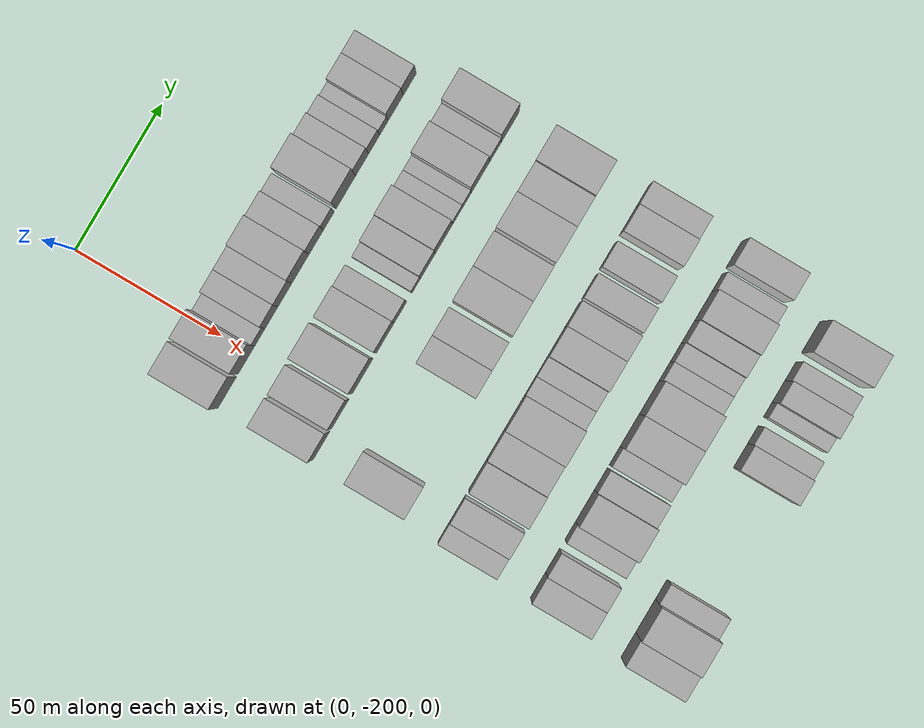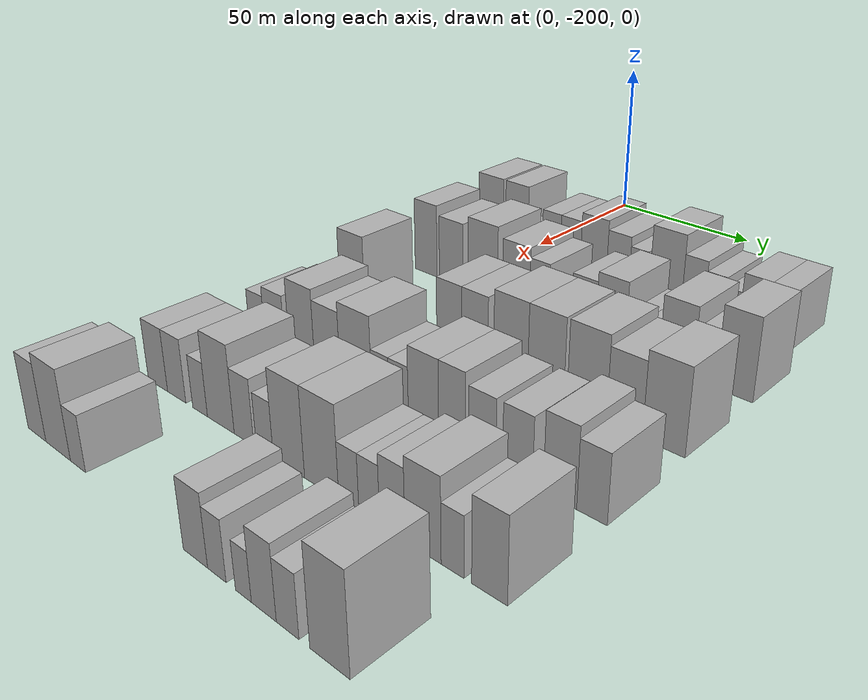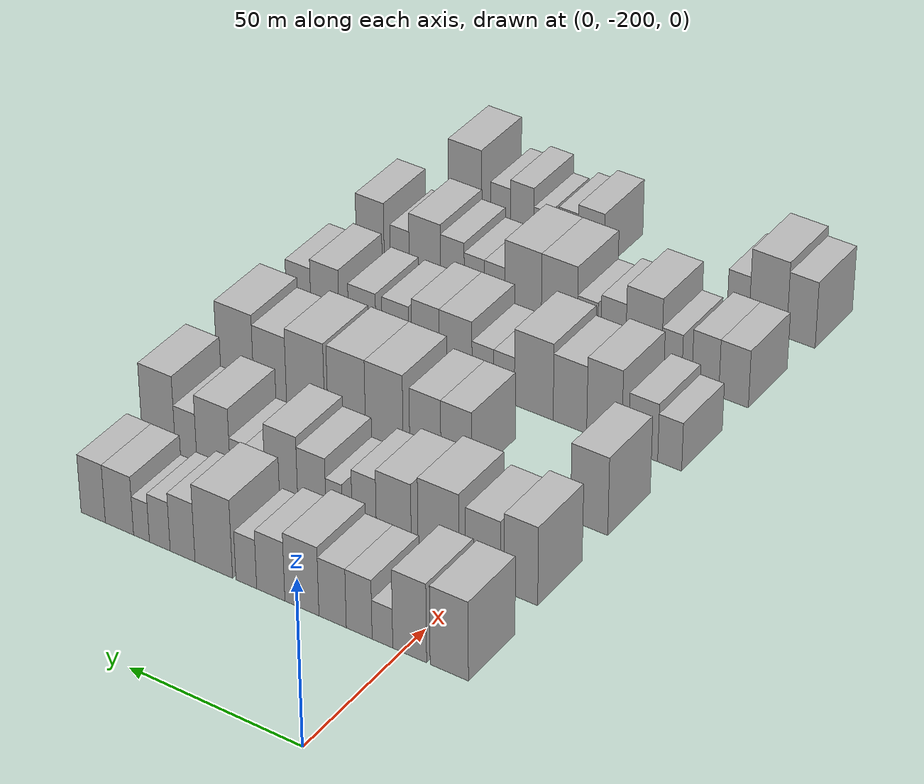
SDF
<sdf version="1.6">
 <world name="default">
  <model name="building_37">
   <static>1</static>
   <pose>50.0000 -213.4849 0 0.000000 0.000000 0.000000</pose>
   <link name="link">
    <pose>0 0 12.00 0 0 0</pose>
    <collision name="collision"><geometry><box><size>20.0000 10.8123 24.0000</size></box></geometry></collision>
    <visual name="visual">
     <cast_shadows>0</cast_shadows>
     <geometry><box><size>20.0000 10.8123 24.0000</size></box></geometry>
     <material>
      <script>
       <uri>model://HANNAS_wall/materials/scripts</uri>
       <uri>model://HANNAS_wall/materials/textures</uri>
       <name>vrc/HANNAS_wall</name>
      </script>
     </material>
    </visual>
   </link>
  </model>
  <model name="building_38">
   <static>1</static>
   <pose>50.0000 -202.2470 0 0.000000 0.000000 0.000000</pose>
   <link name="link">
    <pose>0 0 12.00 0 0 0</pose>
    <collision name="collision"><geometry><box><size>20.0000 9.6637 24.0000</size></box></geometry></collision>
    <visual name="visual">
     <cast_shadows>0</cast_shadows>
     <geometry><box><size>20.0000 9.6637 24.0000</size></box></geometry>
     <material>
      <script>
       <uri>model://HANNAS_wall/materials/scripts</uri>
       <uri>model://HANNAS_wall/materials/textures</uri>
       <name>vrc/HANNAS_wall</name>
      </script>
     </material>
    </visual>
   </link>
  </model>
  <model name="building_39">
   <static>1</static>
   <pose>50.0000 -194.4472 0 0.000000 0.000000 0.000000</pose>
   <link name="link">
    <pose>0 0 6.00 0 0 0</pose>
    <collision name="collision"><geometry><box><size>20.0000 5.9358 12.0000</size></box></geometry></collision>
    <visual name="visual">
     <cast_shadows>0</cast_shadows>
     <geometry><box><size>20.0000 5.9358 12.0000</size></box></geometry>
     <material>
      <script>
       <uri>model://HANNAS_wall/materials/scripts</uri>
       <uri>model://HANNAS_wall/materials/textures</uri>
       <name>vrc/HANNAS_wall</name>
      </script>
     </material>
    </visual>
   </link>
  </model>
  <model name="building_40">
   <static>1</static>
   <pose>50.0000 -187.7414 0 0.000000 0.000000 0.000000</pose>
   <link name="link">
    <pose>0 0 9.00 0 0 0</pose>
    <collision name="collision"><geometry><box><size>20.0000 7.4758 18.0000</size></box></geometry></collision>
    <visual name="visual">
     <cast_shadows>0</cast_shadows>
     <geometry><box><size>20.0000 7.4758 18.0000</size></box></geometry>
     <material>
      <script>
       <uri>model://HANNAS_wall/materials/scripts</uri>
       <uri>model://HANNAS_wall/materials/textures</uri>
       <name>vrc/HANNAS_wall</name>
      </script>
     </material>
    </visual>
   </link>
  </model>
  <model name="building_41">
   <static>1</static>
   <pose>50.0000 -180.0132 0 0.000000 0.000000 0.000000</pose>
   <link name="link">
    <pose>0 0 9.00 0 0 0</pose>
    <collision name="collision"><geometry><box><size>20.0000 7.9806 18.0000</size></box></geometry></collision>
    <visual name="visual">
     <cast_shadows>0</cast_shadows>
     <geometry><box><size>20.0000 7.9806 18.0000</size></box></geometry>
     <material>
      <script>
       <uri>model://HANNAS_wall/materials/scripts</uri>
       <uri>model://HANNAS_wall/materials/textures</uri>
       <name>vrc/HANNAS_wall</name>
      </script>
     </material>
    </visual>
   </link>
  </model>
  <model name="building_42">
   <static>1</static>
   <pose>50.0000 -171.0096 0 0.000000 0.000000 0.000000</pose>
   <link name="link">
    <pose>0 0 10.50 0 0 0</pose>
    <collision name="collision"><geometry><box><size>20.0000 10.0265 21.0000</size></box></geometry></collision>
    <visual name="visual">
     <cast_shadows>0</cast_shadows>
     <geometry><box><size>20.0000 10.0265 21.0000</size></box></geometry>
     <material>
      <script>
       <uri>model://HANNAS_wall/materials/scripts</uri>
       <uri>model://HANNAS_wall/materials/textures</uri>
       <name>vrc/HANNAS_wall</name>
      </script>
     </material>
    </visual>
   </link>
  </model>
  <model name="building_43">
   <static>1</static>
   <pose>50.0000 -161.8085 0 0.000000 0.000000 0.000000</pose>
   <link name="link">
    <pose>0 0 9.00 0 0 0</pose>
    <collision name="collision"><geometry><box><size>20.0000 8.3756 18.0000</size></box></geometry></collision>
    <visual name="visual">
     <cast_shadows>0</cast_shadows>
     <geometry><box><size>20.0000 8.3756 18.0000</size></box></geometry>
     <material>
      <script>
       <uri>model://HANNAS_wall/materials/scripts</uri>
       <uri>model://HANNAS_wall/materials/textures</uri>
       <name>vrc/HANNAS_wall</name>
      </script>
     </material>
    </visual>
   </link>
  </model>
  <model name="building_44">
   <static>1</static>
   <pose>50.0000 -154.5138 0 0.000000 0.000000 0.000000</pose>
   <link name="link">
    <pose>0 0 7.50 0 0 0</pose>
    <collision name="collision"><geometry><box><size>20.0000 6.2137 15.0000</size></box></geometry></collision>
    <visual name="visual">
     <cast_shadows>0</cast_shadows>
     <geometry><box><size>20.0000 6.2137 15.0000</size></box></geometry>
     <material>
      <script>
       <uri>model://HANNAS_wall/materials/scripts</uri>
       <uri>model://HANNAS_wall/materials/textures</uri>
       <name>vrc/HANNAS_wall</name>
      </script>
     </material>
    </visual>
   </link>
  </model>
  <model name="building_45">
   <static>1</static>
   <pose>50.0000 -144.7512 0 0.000000 0.000000 0.000000</pose>
   <link name="link">
    <pose>0 0 12.00 0 0 0</pose>
    <collision name="collision"><geometry><box><size>20.0000 11.3115 24.0000</size></box></geometry></collision>
    <visual name="visual">
     <cast_shadows>0</cast_shadows>
     <geometry><box><size>20.0000 11.3115 24.0000</size></box></geometry>
     <material>
      <script>
       <uri>model://HANNAS_wall/materials/scripts</uri>
       <uri>model://HANNAS_wall/materials/textures</uri>
       <name>vrc/HANNAS_wall</name>
      </script>
     </material>
    </visual>
   </link>
  </model>
  <model name="building_46">
   <static>1</static>
   <pose>50.0000 -135.3058 0 0.000000 0.000000 0.000000</pose>
   <link name="link">
    <pose>0 0 9.00 0 0 0</pose>
    <collision name="collision"><geometry><box><size>20.0000 7.5793 18.0000</size></box></geometry></collision>
    <visual name="visual">
     <cast_shadows>0</cast_shadows>
     <geometry><box><size>20.0000 7.5793 18.0000</size></box></geometry>
     <material>
      <script>
       <uri>model://HANNAS_wall/materials/scripts</uri>
       <uri>model://HANNAS_wall/materials/textures</uri>
       <name>vrc/HANNAS_wall</name>
      </script>
     </material>
    </visual>
   </link>
  </model>
  <model name="building_47">
   <static>1</static>
   <pose>50.0000 -128.3319 0 0.000000 0.000000 0.000000</pose>
   <link name="link">
    <pose>0 0 7.50 0 0 0</pose>
    <collision name="collision"><geometry><box><size>20.0000 6.3683 15.0000</size></box></geometry></collision>
    <visual name="visual">
     <cast_shadows>0</cast_shadows>
     <geometry><box><size>20.0000 6.3683 15.0000</size></box></geometry>
     <material>
      <script>
       <uri>model://HANNAS_wall/materials/scripts</uri>
       <uri>model://HANNAS_wall/materials/textures</uri>
       <name>vrc/HANNAS_wall</name>
      </script>
     </material>
    </visual>
   </link>
  </model>
  <model name="building_48">
   <static>1</static>
   <pose>50.0000 -122.7031 0 0.000000 0.000000 0.000000</pose>
   <link name="link">
    <pose>0 0 6.00 0 0 0</pose>
    <collision name="collision"><geometry><box><size>20.0000 4.8894 12.0000</size></box></geometry></collision>
    <visual name="visual">
     <cast_shadows>0</cast_shadows>
     <geometry><box><size>20.0000 4.8894 12.0000</size></box></geometry>
     <material>
      <script>
       <uri>model://HANNAS_wall/materials/scripts</uri>
       <uri>model://HANNAS_wall/materials/textures</uri>
       <name>vrc/HANNAS_wall</name>
      </script>
     </material>
    </visual>
   </link>
  </model>
  <model name="building_49">
   <static>1</static>
   <pose>50.0000 -115.8903 0 0.000000 0.000000 0.000000</pose>
   <link name="link">
    <pose>0 0 9.00 0 0 0</pose>
    <collision name="collision"><geometry><box><size>20.0000 8.7363 18.0000</size></box></geometry></collision>
    <visual name="visual">
     <cast_shadows>0</cast_shadows>
     <geometry><box><size>20.0000 8.7363 18.0000</size></box></geometry>
     <material>
      <script>
       <uri>model://HANNAS_wall/materials/scripts</uri>
       <uri>model://HANNAS_wall/materials/textures</uri>
       <name>vrc/HANNAS_wall</name>
      </script>
     </material>
    </visual>
   </link>
  </model>
  <model name="building_50">
   <static>1</static>
   <pose>50.0000 -107.7333 0 0.000000 0.000000 0.000000</pose>
   <link name="link">
    <pose>0 0 9.00 0 0 0</pose>
    <collision name="collision"><geometry><box><size>20.0000 7.5775 18.0000</size></box></geometry></collision>
    <visual name="visual">
     <cast_shadows>0</cast_shadows>
     <geometry><box><size>20.0000 7.5775 18.0000</size></box></geometry>
     <material>
      <script>
       <uri>model://HANNAS_wall/materials/scripts</uri>
       <uri>model://HANNAS_wall/materials/textures</uri>
       <name>vrc/HANNAS_wall</name>
      </script>
     </material>
    </visual>
   </link>
  </model>
  <model name="building_158">
   <static>1</static>
   <pose>82.0000 -212.7467 0 0.000000 0.000000 0.000000</pose>
   <link name="link">
    <pose>0 0 12.00 0 0 0</pose>
    <collision name="collision"><geometry><box><size>20.0000 9.6644 24.0000</size></box></geometry></collision>
    <visual name="visual">
     <cast_shadows>0</cast_shadows>
     <geometry><box><size>20.0000 9.6644 24.0000</size></box></geometry>
     <material>
      <script>
       <uri>model://HANNAS_wall/materials/scripts</uri>
       <uri>model://HANNAS_wall/materials/textures</uri>
       <name>vrc/HANNAS_wall</name>
      </script>
     </material>
    </visual>
   </link>
  </model>
  <model name="building_159">
   <static>1</static>
   <pose>82.0000 -201.8767 0 0.000000 0.000000 0.000000</pose>
   <link name="link">
    <pose>0 0 10.50 0 0 0</pose>
    <collision name="collision"><geometry><box><size>20.0000 10.0757 21.0000</size></box></geometry></collision>
    <visual name="visual">
     <cast_shadows>0</cast_shadows>
     <geometry><box><size>20.0000 10.0757 21.0000</size></box></geometry>
     <material>
      <script>
       <uri>model://HANNAS_wall/materials/scripts</uri>
       <uri>model://HANNAS_wall/materials/textures</uri>
       <name>vrc/HANNAS_wall</name>
      </script>
     </material>
    </visual>
   </link>
  </model>
  <model name="building_160">
   <static>1</static>
   <pose>82.0000 -188.8904 0 0.000000 0.000000 0.000000</pose>
   <link name="link">
    <pose>0 0 12.00 0 0 0</pose>
    <collision name="collision"><geometry><box><size>20.0000 11.8968 24.0000</size></box></geometry></collision>
    <visual name="visual">
     <cast_shadows>0</cast_shadows>
     <geometry><box><size>20.0000 11.8968 24.0000</size></box></geometry>
     <material>
      <script>
       <uri>model://HANNAS_wall/materials/scripts</uri>
       <uri>model://HANNAS_wall/materials/textures</uri>
       <name>vrc/HANNAS_wall</name>
      </script>
     </material>
    </visual>
   </link>
  </model>
  <model name="building_161">
   <static>1</static>
   <pose>82.0000 -175.7721 0 0.000000 0.000000 0.000000</pose>
   <link name="link">
    <pose>0 0 10.50 0 0 0</pose>
    <collision name="collision"><geometry><box><size>20.0000 10.3398 21.0000</size></box></geometry></collision>
    <visual name="visual">
     <cast_shadows>0</cast_shadows>
     <geometry><box><size>20.0000 10.3398 21.0000</size></box></geometry>
     <material>
      <script>
       <uri>model://HANNAS_wall/materials/scripts</uri>
       <uri>model://HANNAS_wall/materials/textures</uri>
       <name>vrc/HANNAS_wall</name>
      </script>
     </material>
    </visual>
   </link>
  </model>
  <model name="building_162">
   <static>1</static>
   <pose>82.0000 -166.9886 0 0.000000 0.000000 0.000000</pose>
   <link name="link">
    <pose>0 0 9.00 0 0 0</pose>
    <collision name="collision"><geometry><box><size>20.0000 7.2272 18.0000</size></box></geometry></collision>
    <visual name="visual">
     <cast_shadows>0</cast_shadows>
     <geometry><box><size>20.0000 7.2272 18.0000</size></box></geometry>
     <material>
      <script>
       <uri>model://HANNAS_wall/materials/scripts</uri>
       <uri>model://HANNAS_wall/materials/textures</uri>
       <name>vrc/HANNAS_wall</name>
      </script>
     </material>
    </visual>
   </link>
  </model>
  <model name="building_163">
   <static>1</static>
   <pose>82.0000 -157.9283 0 0.000000 0.000000 0.000000</pose>
   <link name="link">
    <pose>0 0 6.00 0 0 0</pose>
    <collision name="collision"><geometry><box><size>20.0000 4.8933 12.0000</size></box></geometry></collision>
    <visual name="visual">
     <cast_shadows>0</cast_shadows>
     <geometry><box><size>20.0000 4.8933 12.0000</size></box></geometry>
     <material>
      <script>
       <uri>model://HANNAS_wall/materials/scripts</uri>
       <uri>model://HANNAS_wall/materials/textures</uri>
       <name>vrc/HANNAS_wall</name>
      </script>
     </material>
    </visual>
   </link>
  </model>
  <model name="building_164">
   <static>1</static>
   <pose>82.0000 -151.1940 0 0.000000 0.000000 0.000000</pose>
   <link name="link">
    <pose>0 0 9.00 0 0 0</pose>
    <collision name="collision"><geometry><box><size>20.0000 8.5754 18.0000</size></box></geometry></collision>
    <visual name="visual">
     <cast_shadows>0</cast_shadows>
     <geometry><box><size>20.0000 8.5754 18.0000</size></box></geometry>
     <material>
      <script>
       <uri>model://HANNAS_wall/materials/scripts</uri>
       <uri>model://HANNAS_wall/materials/textures</uri>
       <name>vrc/HANNAS_wall</name>
      </script>
     </material>
    </visual>
   </link>
  </model>
  <model name="building_165">
   <static>1</static>
   <pose>82.0000 -141.9310 0 0.000000 0.000000 0.000000</pose>
   <link name="link">
    <pose>0 0 10.50 0 0 0</pose>
    <collision name="collision"><geometry><box><size>20.0000 9.9508 21.0000</size></box></geometry></collision>
    <visual name="visual">
     <cast_shadows>0</cast_shadows>
     <geometry><box><size>20.0000 9.9508 21.0000</size></box></geometry>
     <material>
      <script>
       <uri>model://HANNAS_wall/materials/scripts</uri>
       <uri>model://HANNAS_wall/materials/textures</uri>
       <name>vrc/HANNAS_wall</name>
      </script>
     </material>
    </visual>
   </link>
  </model>
  <model name="building_166">
   <static>1</static>
   <pose>82.0000 -134.0317 0 0.000000 0.000000 0.000000</pose>
   <link name="link">
    <pose>0 0 6.00 0 0 0</pose>
    <collision name="collision"><geometry><box><size>20.0000 5.8476 12.0000</size></box></geometry></collision>
    <visual name="visual">
     <cast_shadows>0</cast_shadows>
     <geometry><box><size>20.0000 5.8476 12.0000</size></box></geometry>
     <material>
      <script>
       <uri>model://HANNAS_wall/materials/scripts</uri>
       <uri>model://HANNAS_wall/materials/textures</uri>
       <name>vrc/HANNAS_wall</name>
      </script>
     </material>
    </visual>
   </link>
  </model>
  <model name="building_167">
   <static>1</static>
   <pose>82.0000 -128.6366 0 0.000000 0.000000 0.000000</pose>
   <link name="link">
    <pose>0 0 6.00 0 0 0</pose>
    <collision name="collision"><geometry><box><size>20.0000 4.9426 12.0000</size></box></geometry></collision>
    <visual name="visual">
     <cast_shadows>0</cast_shadows>
     <geometry><box><size>20.0000 4.9426 12.0000</size></box></geometry>
     <material>
      <script>
       <uri>model://HANNAS_wall/materials/scripts</uri>
       <uri>model://HANNAS_wall/materials/textures</uri>
       <name>vrc/HANNAS_wall</name>
      </script>
     </material>
    </visual>
   </link>
  </model>
  <model name="building_168">
   <static>1</static>
   <pose>82.0000 -120.9324 0 0.000000 0.000000 0.000000</pose>
   <link name="link">
    <pose>0 0 10.50 0 0 0</pose>
    <collision name="collision"><geometry><box><size>20.0000 10.4659 21.0000</size></box></geometry></collision>
    <visual name="visual">
     <cast_shadows>0</cast_shadows>
     <geometry><box><size>20.0000 10.4659 21.0000</size></box></geometry>
     <material>
      <script>
       <uri>model://HANNAS_wall/materials/scripts</uri>
       <uri>model://HANNAS_wall/materials/textures</uri>
       <name>vrc/HANNAS_wall</name>
      </script>
     </material>
    </visual>
   </link>
  </model>
  <model name="building_169">
   <static>1</static>
   <pose>82.0000 -112.3498 0 0.000000 0.000000 0.000000</pose>
   <link name="link">
    <pose>0 0 7.50 0 0 0</pose>
    <collision name="collision"><geometry><box><size>20.0000 6.6992 15.0000</size></box></geometry></collision>
    <visual name="visual">
     <cast_shadows>0</cast_shadows>
     <geometry><box><size>20.0000 6.6992 15.0000</size></box></geometry>
     <material>
      <script>
       <uri>model://HANNAS_wall/materials/scripts</uri>
       <uri>model://HANNAS_wall/materials/textures</uri>
       <name>vrc/HANNAS_wall</name>
      </script>
     </material>
    </visual>
   </link>
  </model>
  <model name="building_170">
   <static>1</static>
   <pose>82.0000 -103.7498 0 0.000000 0.000000 0.000000</pose>
   <link name="link">
    <pose>0 0 12.00 0 0 0</pose>
    <collision name="collision"><geometry><box><size>20.0000 10.5010 24.0000</size></box></geometry></collision>
    <visual name="visual">
     <cast_shadows>0</cast_shadows>
     <geometry><box><size>20.0000 10.5010 24.0000</size></box></geometry>
     <material>
      <script>
       <uri>model://HANNAS_wall/materials/scripts</uri>
       <uri>model://HANNAS_wall/materials/textures</uri>
       <name>vrc/HANNAS_wall</name>
      </script>
     </material>
    </visual>
   </link>
  </model>
  <model name="building_282">
   <static>1</static>
   <pose>114.0000 -212.0162 0 0.000000 0.000000 0.000000</pose>
   <link name="link">
    <pose>0 0 12.00 0 0 0</pose>
    <collision name="collision"><geometry><box><size>20.0000 10.8293 24.0000</size></box></geometry></collision>
    <visual name="visual">
     <cast_shadows>0</cast_shadows>
     <geometry><box><size>20.0000 10.8293 24.0000</size></box></geometry>
     <material>
      <script>
       <uri>model://HANNAS_wall/materials/scripts</uri>
       <uri>model://HANNAS_wall/materials/textures</uri>
       <name>vrc/HANNAS_wall</name>
      </script>
     </material>
    </visual>
   </link>
  </model>
  <model name="building_283">
   <static>1</static>
   <pose>114.0000 -172.7421 0 0.000000 0.000000 0.000000</pose>
   <link name="link">
    <pose>0 0 10.50 0 0 0</pose>
    <collision name="collision"><geometry><box><size>20.0000 9.2396 21.0000</size></box></geometry></collision>
    <visual name="visual">
     <cast_shadows>0</cast_shadows>
     <geometry><box><size>20.0000 9.2396 21.0000</size></box></geometry>
     <material>
      <script>
       <uri>model://HANNAS_wall/materials/scripts</uri>
       <uri>model://HANNAS_wall/materials/textures</uri>
       <name>vrc/HANNAS_wall</name>
      </script>
     </material>
    </visual>
   </link>
  </model>
  <model name="building_284">
   <static>1</static>
   <pose>114.0000 -163.3964 0 0.000000 0.000000 0.000000</pose>
   <link name="link">
    <pose>0 0 10.50 0 0 0</pose>
    <collision name="collision"><geometry><box><size>20.0000 9.4518 21.0000</size></box></geometry></collision>
    <visual name="visual">
     <cast_shadows>0</cast_shadows>
     <geometry><box><size>20.0000 9.4518 21.0000</size></box></geometry>
     <material>
      <script>
       <uri>model://HANNAS_wall/materials/scripts</uri>
       <uri>model://HANNAS_wall/materials/textures</uri>
       <name>vrc/HANNAS_wall</name>
      </script>
     </material>
    </visual>
   </link>
  </model>
  <model name="building_285">
   <static>1</static>
   <pose>114.0000 -150.8934 0 0.000000 0.000000 0.000000</pose>
   <link name="link">
    <pose>0 0 12.00 0 0 0</pose>
    <collision name="collision"><geometry><box><size>20.0000 11.5542 24.0000</size></box></geometry></collision>
    <visual name="visual">
     <cast_shadows>0</cast_shadows>
     <geometry><box><size>20.0000 11.5542 24.0000</size></box></geometry>
     <material>
      <script>
       <uri>model://HANNAS_wall/materials/scripts</uri>
       <uri>model://HANNAS_wall/materials/textures</uri>
       <name>vrc/HANNAS_wall</name>
      </script>
     </material>
    </visual>
   </link>
  </model>
  <model name="building_286">
   <static>1</static>
   <pose>114.0000 -139.2770 0 0.000000 0.000000 0.000000</pose>
   <link name="link">
    <pose>0 0 12.00 0 0 0</pose>
    <collision name="collision"><geometry><box><size>20.0000 11.6785 24.0000</size></box></geometry></collision>
    <visual name="visual">
     <cast_shadows>0</cast_shadows>
     <geometry><box><size>20.0000 11.6785 24.0000</size></box></geometry>
     <material>
      <script>
       <uri>model://HANNAS_wall/materials/scripts</uri>
       <uri>model://HANNAS_wall/materials/textures</uri>
       <name>vrc/HANNAS_wall</name>
      </script>
     </material>
    </visual>
   </link>
  </model>
  <model name="building_287">
   <static>1</static>
   <pose>114.0000 -126.4446 0 0.000000 0.000000 0.000000</pose>
   <link name="link">
    <pose>0 0 12.00 0 0 0</pose>
    <collision name="collision"><geometry><box><size>20.0000 11.9862 24.0000</size></box></geometry></collision>
    <visual name="visual">
     <cast_shadows>0</cast_shadows>
     <geometry><box><size>20.0000 11.9862 24.0000</size></box></geometry>
     <material>
      <script>
       <uri>model://HANNAS_wall/materials/scripts</uri>
       <uri>model://HANNAS_wall/materials/textures</uri>
       <name>vrc/HANNAS_wall</name>
      </script>
     </material>
    </visual>
   </link>
  </model>
  <model name="building_288">
   <static>1</static>
   <pose>114.0000 -115.2723 0 0.000000 0.000000 0.000000</pose>
   <link name="link">
    <pose>0 0 10.50 0 0 0</pose>
    <collision name="collision"><geometry><box><size>20.0000 10.3585 21.0000</size></box></geometry></collision>
    <visual name="visual">
     <cast_shadows>0</cast_shadows>
     <geometry><box><size>20.0000 10.3585 21.0000</size></box></geometry>
     <material>
      <script>
       <uri>model://HANNAS_wall/materials/scripts</uri>
       <uri>model://HANNAS_wall/materials/textures</uri>
       <name>vrc/HANNAS_wall</name>
      </script>
     </material>
    </visual>
   </link>
  </model>
  <model name="building_289">
   <static>1</static>
   <pose>114.0000 -104.2452 0 0.000000 0.000000 0.000000</pose>
   <link name="link">
    <pose>0 0 12.00 0 0 0</pose>
    <collision name="collision"><geometry><box><size>20.0000 11.6957 24.0000</size></box></geometry></collision>
    <visual name="visual">
     <cast_shadows>0</cast_shadows>
     <geometry><box><size>20.0000 11.6957 24.0000</size></box></geometry>
     <material>
      <script>
       <uri>model://HANNAS_wall/materials/scripts</uri>
       <uri>model://HANNAS_wall/materials/textures</uri>
       <name>vrc/HANNAS_wall</name>
      </script>
     </material>
    </visual>
   </link>
  </model>
  <model name="building_395">
   <static>1</static>
   <pose>146.0000 -215.7951 0 0.000000 0.000000 0.000000</pose>
   <link name="link">
    <pose>0 0 7.50 0 0 0</pose>
    <collision name="collision"><geometry><box><size>20.0000 7.0424 15.0000</size></box></geometry></collision>
    <visual name="visual">
     <cast_shadows>0</cast_shadows>
     <geometry><box><size>20.0000 7.0424 15.0000</size></box></geometry>
     <material>
      <script>
       <uri>model://HANNAS_wall/materials/scripts</uri>
       <uri>model://HANNAS_wall/materials/textures</uri>
       <name>vrc/HANNAS_wall</name>
      </script>
     </material>
    </visual>
   </link>
  </model>
  <model name="building_396">
   <static>1</static>
   <pose>146.0000 -207.9326 0 0.000000 0.000000 0.000000</pose>
   <link name="link">
    <pose>0 0 9.00 0 0 0</pose>
    <collision name="collision"><geometry><box><size>20.0000 8.6827 18.0000</size></box></geometry></collision>
    <visual name="visual">
     <cast_shadows>0</cast_shadows>
     <geometry><box><size>20.0000 8.6827 18.0000</size></box></geometry>
     <material>
      <script>
       <uri>model://HANNAS_wall/materials/scripts</uri>
       <uri>model://HANNAS_wall/materials/textures</uri>
       <name>vrc/HANNAS_wall</name>
      </script>
     </material>
    </visual>
   </link>
  </model>
  <model name="building_397">
   <static>1</static>
   <pose>146.0000 -196.3825 0 0.000000 0.000000 0.000000</pose>
   <link name="link">
    <pose>0 0 12.00 0 0 0</pose>
    <collision name="collision"><geometry><box><size>20.0000 10.4175 24.0000</size></box></geometry></collision>
    <visual name="visual">
     <cast_shadows>0</cast_shadows>
     <geometry><box><size>20.0000 10.4175 24.0000</size></box></geometry>
     <material>
      <script>
       <uri>model://HANNAS_wall/materials/scripts</uri>
       <uri>model://HANNAS_wall/materials/textures</uri>
       <name>vrc/HANNAS_wall</name>
      </script>
     </material>
    </visual>
   </link>
  </model>
  <model name="building_398">
   <static>1</static>
   <pose>146.0000 -186.1224 0 0.000000 0.000000 0.000000</pose>
   <link name="link">
    <pose>0 0 10.50 0 0 0</pose>
    <collision name="collision"><geometry><box><size>20.0000 10.1027 21.0000</size></box></geometry></collision>
    <visual name="visual">
     <cast_shadows>0</cast_shadows>
     <geometry><box><size>20.0000 10.1027 21.0000</size></box></geometry>
     <material>
      <script>
       <uri>model://HANNAS_wall/materials/scripts</uri>
       <uri>model://HANNAS_wall/materials/textures</uri>
       <name>vrc/HANNAS_wall</name>
      </script>
     </material>
    </visual>
   </link>
  </model>
  <model name="building_399">
   <static>1</static>
   <pose>146.0000 -175.1663 0 0.000000 0.000000 0.000000</pose>
   <link name="link">
    <pose>0 0 12.00 0 0 0</pose>
    <collision name="collision"><geometry><box><size>20.0000 11.8095 24.0000</size></box></geometry></collision>
    <visual name="visual">
     <cast_shadows>0</cast_shadows>
     <geometry><box><size>20.0000 11.8095 24.0000</size></box></geometry>
     <material>
      <script>
       <uri>model://HANNAS_wall/materials/scripts</uri>
       <uri>model://HANNAS_wall/materials/textures</uri>
       <name>vrc/HANNAS_wall</name>
      </script>
     </material>
    </visual>
   </link>
  </model>
  <model name="building_400">
   <static>1</static>
   <pose>146.0000 -166.1088 0 0.000000 0.000000 0.000000</pose>
   <link name="link">
    <pose>0 0 7.50 0 0 0</pose>
    <collision name="collision"><geometry><box><size>20.0000 6.3054 15.0000</size></box></geometry></collision>
    <visual name="visual">
     <cast_shadows>0</cast_shadows>
     <geometry><box><size>20.0000 6.3054 15.0000</size></box></geometry>
     <material>
      <script>
       <uri>model://HANNAS_wall/materials/scripts</uri>
       <uri>model://HANNAS_wall/materials/textures</uri>
       <name>vrc/HANNAS_wall</name>
      </script>
     </material>
    </visual>
   </link>
  </model>
  <model name="building_401">
   <static>1</static>
   <pose>146.0000 -159.6035 0 0.000000 0.000000 0.000000</pose>
   <link name="link">
    <pose>0 0 7.50 0 0 0</pose>
    <collision name="collision"><geometry><box><size>20.0000 6.7051 15.0000</size></box></geometry></collision>
    <visual name="visual">
     <cast_shadows>0</cast_shadows>
     <geometry><box><size>20.0000 6.7051 15.0000</size></box></geometry>
     <material>
      <script>
       <uri>model://HANNAS_wall/materials/scripts</uri>
       <uri>model://HANNAS_wall/materials/textures</uri>
       <name>vrc/HANNAS_wall</name>
      </script>
     </material>
    </visual>
   </link>
  </model>
  <model name="building_402">
   <static>1</static>
   <pose>146.0000 -151.1840 0 0.000000 0.000000 0.000000</pose>
   <link name="link">
    <pose>0 0 10.50 0 0 0</pose>
    <collision name="collision"><geometry><box><size>20.0000 10.1340 21.0000</size></box></geometry></collision>
    <visual name="visual">
     <cast_shadows>0</cast_shadows>
     <geometry><box><size>20.0000 10.1340 21.0000</size></box></geometry>
     <material>
      <script>
       <uri>model://HANNAS_wall/materials/scripts</uri>
       <uri>model://HANNAS_wall/materials/textures</uri>
       <name>vrc/HANNAS_wall</name>
      </script>
     </material>
    </visual>
   </link>
  </model>
  <model name="building_403">
   <static>1</static>
   <pose>146.0000 -141.8473 0 0.000000 0.000000 0.000000</pose>
   <link name="link">
    <pose>0 0 10.50 0 0 0</pose>
    <collision name="collision"><geometry><box><size>20.0000 8.5393 21.0000</size></box></geometry></collision>
    <visual name="visual">
     <cast_shadows>0</cast_shadows>
     <geometry><box><size>20.0000 8.5393 21.0000</size></box></geometry>
     <material>
      <script>
       <uri>model://HANNAS_wall/materials/scripts</uri>
       <uri>model://HANNAS_wall/materials/textures</uri>
       <name>vrc/HANNAS_wall</name>
      </script>
     </material>
    </visual>
   </link>
  </model>
  <model name="building_404">
   <static>1</static>
   <pose>146.0000 -132.4064 0 0.000000 0.000000 0.000000</pose>
   <link name="link">
    <pose>0 0 9.00 0 0 0</pose>
    <collision name="collision"><geometry><box><size>20.0000 8.3426 18.0000</size></box></geometry></collision>
    <visual name="visual">
     <cast_shadows>0</cast_shadows>
     <geometry><box><size>20.0000 8.3426 18.0000</size></box></geometry>
     <material>
      <script>
       <uri>model://HANNAS_wall/materials/scripts</uri>
       <uri>model://HANNAS_wall/materials/textures</uri>
       <name>vrc/HANNAS_wall</name>
      </script>
     </material>
    </visual>
   </link>
  </model>
  <model name="building_405">
   <static>1</static>
   <pose>146.0000 -121.8721 0 0.000000 0.000000 0.000000</pose>
   <link name="link">
    <pose>0 0 9.00 0 0 0</pose>
    <collision name="collision"><geometry><box><size>20.0000 8.7260 18.0000</size></box></geometry></collision>
    <visual name="visual">
     <cast_shadows>0</cast_shadows>
     <geometry><box><size>20.0000 8.7260 18.0000</size></box></geometry>
     <material>
      <script>
       <uri>model://HANNAS_wall/materials/scripts</uri>
       <uri>model://HANNAS_wall/materials/textures</uri>
       <name>vrc/HANNAS_wall</name>
      </script>
     </material>
    </visual>
   </link>
  </model>
  <model name="building_406">
   <static>1</static>
   <pose>146.0000 -109.9751 0 0.000000 0.000000 0.000000</pose>
   <link name="link">
    <pose>0 0 10.50 0 0 0</pose>
    <collision name="collision"><geometry><box><size>20.0000 9.0681 21.0000</size></box></geometry></collision>
    <visual name="visual">
     <cast_shadows>0</cast_shadows>
     <geometry><box><size>20.0000 9.0681 21.0000</size></box></geometry>
     <material>
      <script>
       <uri>model://HANNAS_wall/materials/scripts</uri>
       <uri>model://HANNAS_wall/materials/textures</uri>
       <name>vrc/HANNAS_wall</name>
      </script>
     </material>
    </visual>
   </link>
  </model>
  <model name="building_407">
   <static>1</static>
   <pose>146.0000 -101.4620 0 0.000000 0.000000 0.000000</pose>
   <link name="link">
    <pose>0 0 9.00 0 0 0</pose>
    <collision name="collision"><geometry><box><size>20.0000 7.9581 18.0000</size></box></geometry></collision>
    <visual name="visual">
     <cast_shadows>0</cast_shadows>
     <geometry><box><size>20.0000 7.9581 18.0000</size></box></geometry>
     <material>
      <script>
       <uri>model://HANNAS_wall/materials/scripts</uri>
       <uri>model://HANNAS_wall/materials/textures</uri>
       <name>vrc/HANNAS_wall</name>
      </script>
     </material>
    </visual>
   </link>
  </model>
  <model name="building_518">
   <static>1</static>
   <pose>178.0000 -215.5752 0 0.000000 0.000000 0.000000</pose>
   <link name="link">
    <pose>0 0 9.00 0 0 0</pose>
    <collision name="collision"><geometry><box><size>20.0000 8.8222 18.0000</size></box></geometry></collision>
    <visual name="visual">
     <cast_shadows>0</cast_shadows>
     <geometry><box><size>20.0000 8.8222 18.0000</size></box></geometry>
     <material>
      <script>
       <uri>model://HANNAS_wall/materials/scripts</uri>
       <uri>model://HANNAS_wall/materials/textures</uri>
       <name>vrc/HANNAS_wall</name>
      </script>
     </material>
    </visual>
   </link>
  </model>
  <model name="building_519">
   <static>1</static>
   <pose>178.0000 -207.1140 0 0.000000 0.000000 0.000000</pose>
   <link name="link">
    <pose>0 0 9.00 0 0 0</pose>
    <collision name="collision"><geometry><box><size>20.0000 8.1000 18.0000</size></box></geometry></collision>
    <visual name="visual">
     <cast_shadows>0</cast_shadows>
     <geometry><box><size>20.0000 8.1000 18.0000</size></box></geometry>
     <material>
      <script>
       <uri>model://HANNAS_wall/materials/scripts</uri>
       <uri>model://HANNAS_wall/materials/textures</uri>
       <name>vrc/HANNAS_wall</name>
      </script>
     </material>
    </visual>
   </link>
  </model>
  <model name="building_520">
   <static>1</static>
   <pose>178.0000 -196.9529 0 0.000000 0.000000 0.000000</pose>
   <link name="link">
    <pose>0 0 7.50 0 0 0</pose>
    <collision name="collision"><geometry><box><size>20.0000 6.2222 15.0000</size></box></geometry></collision>
    <visual name="visual">
     <cast_shadows>0</cast_shadows>
     <geometry><box><size>20.0000 6.2222 15.0000</size></box></geometry>
     <material>
      <script>
       <uri>model://HANNAS_wall/materials/scripts</uri>
       <uri>model://HANNAS_wall/materials/textures</uri>
       <name>vrc/HANNAS_wall</name>
      </script>
     </material>
    </visual>
   </link>
  </model>
  <model name="building_521">
   <static>1</static>
   <pose>178.0000 -188.3964 0 0.000000 0.000000 0.000000</pose>
   <link name="link">
    <pose>0 0 12.00 0 0 0</pose>
    <collision name="collision"><geometry><box><size>20.0000 10.8908 24.0000</size></box></geometry></collision>
    <visual name="visual">
     <cast_shadows>0</cast_shadows>
     <geometry><box><size>20.0000 10.8908 24.0000</size></box></geometry>
     <material>
      <script>
       <uri>model://HANNAS_wall/materials/scripts</uri>
       <uri>model://HANNAS_wall/materials/textures</uri>
       <name>vrc/HANNAS_wall</name>
      </script>
     </material>
    </visual>
   </link>
  </model>
  <model name="building_522">
   <static>1</static>
   <pose>178.0000 -179.1465 0 0.000000 0.000000 0.000000</pose>
   <link name="link">
    <pose>0 0 9.00 0 0 0</pose>
    <collision name="collision"><geometry><box><size>20.0000 7.6091 18.0000</size></box></geometry></collision>
    <visual name="visual">
     <cast_shadows>0</cast_shadows>
     <geometry><box><size>20.0000 7.6091 18.0000</size></box></geometry>
     <material>
      <script>
       <uri>model://HANNAS_wall/materials/scripts</uri>
       <uri>model://HANNAS_wall/materials/textures</uri>
       <name>vrc/HANNAS_wall</name>
      </script>
     </material>
    </visual>
   </link>
  </model>
  <model name="building_523">
   <static>1</static>
   <pose>178.0000 -171.1901 0 0.000000 0.000000 0.000000</pose>
   <link name="link">
    <pose>0 0 7.50 0 0 0</pose>
    <collision name="collision"><geometry><box><size>20.0000 6.3036 15.0000</size></box></geometry></collision>
    <visual name="visual">
     <cast_shadows>0</cast_shadows>
     <geometry><box><size>20.0000 6.3036 15.0000</size></box></geometry>
     <material>
      <script>
       <uri>model://HANNAS_wall/materials/scripts</uri>
       <uri>model://HANNAS_wall/materials/textures</uri>
       <name>vrc/HANNAS_wall</name>
      </script>
     </material>
    </visual>
   </link>
  </model>
  <model name="building_524">
   <static>1</static>
   <pose>178.0000 -162.4718 0 0.000000 0.000000 0.000000</pose>
   <link name="link">
    <pose>0 0 12.00 0 0 0</pose>
    <collision name="collision"><geometry><box><size>20.0000 11.1332 24.0000</size></box></geometry></collision>
    <visual name="visual">
     <cast_shadows>0</cast_shadows>
     <geometry><box><size>20.0000 11.1332 24.0000</size></box></geometry>
     <material>
      <script>
       <uri>model://HANNAS_wall/materials/scripts</uri>
       <uri>model://HANNAS_wall/materials/textures</uri>
       <name>vrc/HANNAS_wall</name>
      </script>
     </material>
    </visual>
   </link>
  </model>
  <model name="building_525">
   <static>1</static>
   <pose>178.0000 -151.1567 0 0.000000 0.000000 0.000000</pose>
   <link name="link">
    <pose>0 0 12.00 0 0 0</pose>
    <collision name="collision"><geometry><box><size>20.0000 11.4970 24.0000</size></box></geometry></collision>
    <visual name="visual">
     <cast_shadows>0</cast_shadows>
     <geometry><box><size>20.0000 11.4970 24.0000</size></box></geometry>
     <material>
      <script>
       <uri>model://HANNAS_wall/materials/scripts</uri>
       <uri>model://HANNAS_wall/materials/textures</uri>
       <name>vrc/HANNAS_wall</name>
      </script>
     </material>
    </visual>
   </link>
  </model>
  <model name="building_526">
   <static>1</static>
   <pose>178.0000 -142.1894 0 0.000000 0.000000 0.000000</pose>
   <link name="link">
    <pose>0 0 7.50 0 0 0</pose>
    <collision name="collision"><geometry><box><size>20.0000 6.4375 15.0000</size></box></geometry></collision>
    <visual name="visual">
     <cast_shadows>0</cast_shadows>
     <geometry><box><size>20.0000 6.4375 15.0000</size></box></geometry>
     <material>
      <script>
       <uri>model://HANNAS_wall/materials/scripts</uri>
       <uri>model://HANNAS_wall/materials/textures</uri>
       <name>vrc/HANNAS_wall</name>
      </script>
     </material>
    </visual>
   </link>
  </model>
  <model name="building_527">
   <static>1</static>
   <pose>178.0000 -135.7659 0 0.000000 0.000000 0.000000</pose>
   <link name="link">
    <pose>0 0 7.50 0 0 0</pose>
    <collision name="collision"><geometry><box><size>20.0000 6.4096 15.0000</size></box></geometry></collision>
    <visual name="visual">
     <cast_shadows>0</cast_shadows>
     <geometry><box><size>20.0000 6.4096 15.0000</size></box></geometry>
     <material>
      <script>
       <uri>model://HANNAS_wall/materials/scripts</uri>
       <uri>model://HANNAS_wall/materials/textures</uri>
       <name>vrc/HANNAS_wall</name>
      </script>
     </material>
    </visual>
   </link>
  </model>
  <model name="building_528">
   <static>1</static>
   <pose>178.0000 -128.7746 0 0.000000 0.000000 0.000000</pose>
   <link name="link">
    <pose>0 0 9.00 0 0 0</pose>
    <collision name="collision"><geometry><box><size>20.0000 7.5729 18.0000</size></box></geometry></collision>
    <visual name="visual">
     <cast_shadows>0</cast_shadows>
     <geometry><box><size>20.0000 7.5729 18.0000</size></box></geometry>
     <material>
      <script>
       <uri>model://HANNAS_wall/materials/scripts</uri>
       <uri>model://HANNAS_wall/materials/textures</uri>
       <name>vrc/HANNAS_wall</name>
      </script>
     </material>
    </visual>
   </link>
  </model>
  <model name="building_529">
   <static>1</static>
   <pose>178.0000 -119.9349 0 0.000000 0.000000 0.000000</pose>
   <link name="link">
    <pose>0 0 10.50 0 0 0</pose>
    <collision name="collision"><geometry><box><size>20.0000 10.1065 21.0000</size></box></geometry></collision>
    <visual name="visual">
     <cast_shadows>0</cast_shadows>
     <geometry><box><size>20.0000 10.1065 21.0000</size></box></geometry>
     <material>
      <script>
       <uri>model://HANNAS_wall/materials/scripts</uri>
       <uri>model://HANNAS_wall/materials/textures</uri>
       <name>vrc/HANNAS_wall</name>
      </script>
     </material>
    </visual>
   </link>
  </model>
  <model name="building_530">
   <static>1</static>
   <pose>178.0000 -111.8176 0 0.000000 0.000000 0.000000</pose>
   <link name="link">
    <pose>0 0 7.50 0 0 0</pose>
    <collision name="collision"><geometry><box><size>20.0000 6.1281 15.0000</size></box></geometry></collision>
    <visual name="visual">
     <cast_shadows>0</cast_shadows>
     <geometry><box><size>20.0000 6.1281 15.0000</size></box></geometry>
     <material>
      <script>
       <uri>model://HANNAS_wall/materials/scripts</uri>
       <uri>model://HANNAS_wall/materials/textures</uri>
       <name>vrc/HANNAS_wall</name>
      </script>
     </material>
    </visual>
   </link>
  </model>
  <model name="building_531">
   <static>1</static>
   <pose>178.0000 -102.1930 0 0.000000 0.000000 0.000000</pose>
   <link name="link">
    <pose>0 0 10.50 0 0 0</pose>
    <collision name="collision"><geometry><box><size>20.0000 9.1210 21.0000</size></box></geometry></collision>
    <visual name="visual">
     <cast_shadows>0</cast_shadows>
     <geometry><box><size>20.0000 9.1210 21.0000</size></box></geometry>
     <material>
      <script>
       <uri>model://HANNAS_wall/materials/scripts</uri>
       <uri>model://HANNAS_wall/materials/textures</uri>
       <name>vrc/HANNAS_wall</name>
      </script>
     </material>
    </visual>
   </link>
  </model>
  <model name="building_637">
   <static>1</static>
   <pose>210.0000 -217.2021 0 0.000000 0.000000 0.000000</pose>
   <link name="link">
    <pose>0 0 10.50 0 0 0</pose>
    <collision name="collision"><geometry><box><size>20.0000 8.6135 21.0000</size></box></geometry></collision>
    <visual name="visual">
     <cast_shadows>0</cast_shadows>
     <geometry><box><size>20.0000 8.6135 21.0000</size></box></geometry>
     <material>
      <script>
       <uri>model://HANNAS_wall/materials/scripts</uri>
       <uri>model://HANNAS_wall/materials/textures</uri>
       <name>vrc/HANNAS_wall</name>
      </script>
     </material>
    </visual>
   </link>
  </model>
  <model name="building_638">
   <static>1</static>
   <pose>210.0000 -207.1960 0 0.000000 0.000000 0.000000</pose>
   <link name="link">
    <pose>0 0 12.00 0 0 0</pose>
    <collision name="collision"><geometry><box><size>20.0000 11.3988 24.0000</size></box></geometry></collision>
    <visual name="visual">
     <cast_shadows>0</cast_shadows>
     <geometry><box><size>20.0000 11.3988 24.0000</size></box></geometry>
     <material>
      <script>
       <uri>model://HANNAS_wall/materials/scripts</uri>
       <uri>model://HANNAS_wall/materials/textures</uri>
       <name>vrc/HANNAS_wall</name>
      </script>
     </material>
    </visual>
   </link>
  </model>
  <model name="building_639">
   <static>1</static>
   <pose>210.0000 -198.1418 0 0.000000 0.000000 0.000000</pose>
   <link name="link">
    <pose>0 0 7.50 0 0 0</pose>
    <collision name="collision"><geometry><box><size>20.0000 6.7095 15.0000</size></box></geometry></collision>
    <visual name="visual">
     <cast_shadows>0</cast_shadows>
     <geometry><box><size>20.0000 6.7095 15.0000</size></box></geometry>
     <material>
      <script>
       <uri>model://HANNAS_wall/materials/scripts</uri>
       <uri>model://HANNAS_wall/materials/textures</uri>
       <name>vrc/HANNAS_wall</name>
      </script>
     </material>
    </visual>
   </link>
  </model>
  <model name="building_640">
   <static>1</static>
   <pose>210.0000 -152.2166 0 0.000000 0.000000 0.000000</pose>
   <link name="link">
    <pose>0 0 9.00 0 0 0</pose>
    <collision name="collision"><geometry><box><size>20.0000 8.3803 18.0000</size></box></geometry></collision>
    <visual name="visual">
     <cast_shadows>0</cast_shadows>
     <geometry><box><size>20.0000 8.3803 18.0000</size></box></geometry>
     <material>
      <script>
       <uri>model://HANNAS_wall/materials/scripts</uri>
       <uri>model://HANNAS_wall/materials/textures</uri>
       <name>vrc/HANNAS_wall</name>
      </script>
     </material>
    </visual>
   </link>
  </model>
  <model name="building_641">
   <static>1</static>
   <pose>210.0000 -144.9781 0 0.000000 0.000000 0.000000</pose>
   <link name="link">
    <pose>0 0 7.50 0 0 0</pose>
    <collision name="collision"><geometry><box><size>20.0000 6.0967 15.0000</size></box></geometry></collision>
    <visual name="visual">
     <cast_shadows>0</cast_shadows>
     <geometry><box><size>20.0000 6.0967 15.0000</size></box></geometry>
     <material>
      <script>
       <uri>model://HANNAS_wall/materials/scripts</uri>
       <uri>model://HANNAS_wall/materials/textures</uri>
       <name>vrc/HANNAS_wall</name>
      </script>
     </material>
    </visual>
   </link>
  </model>
  <model name="building_642">
   <static>1</static>
   <pose>210.0000 -136.4366 0 0.000000 0.000000 0.000000</pose>
   <link name="link">
    <pose>0 0 6.00 0 0 0</pose>
    <collision name="collision"><geometry><box><size>20.0000 4.9863 12.0000</size></box></geometry></collision>
    <visual name="visual">
     <cast_shadows>0</cast_shadows>
     <geometry><box><size>20.0000 4.9863 12.0000</size></box></geometry>
     <material>
      <script>
       <uri>model://HANNAS_wall/materials/scripts</uri>
       <uri>model://HANNAS_wall/materials/textures</uri>
       <name>vrc/HANNAS_wall</name>
      </script>
     </material>
    </visual>
   </link>
  </model>
  <model name="building_643">
   <static>1</static>
   <pose>210.0000 -130.1905 0 0.000000 0.000000 0.000000</pose>
   <link name="link">
    <pose>0 0 9.00 0 0 0</pose>
    <collision name="collision"><geometry><box><size>20.0000 7.5059 18.0000</size></box></geometry></collision>
    <visual name="visual">
     <cast_shadows>0</cast_shadows>
     <geometry><box><size>20.0000 7.5059 18.0000</size></box></geometry>
     <material>
      <script>
       <uri>model://HANNAS_wall/materials/scripts</uri>
       <uri>model://HANNAS_wall/materials/textures</uri>
       <name>vrc/HANNAS_wall</name>
      </script>
     </material>
    </visual>
   </link>
  </model>
  <model name="building_644">
   <static>1</static>
   <pose>210.0000 -123.1755 0 0.000000 0.000000 0.000000</pose>
   <link name="link">
    <pose>0 0 7.50 0 0 0</pose>
    <collision name="collision"><geometry><box><size>20.0000 6.5242 15.0000</size></box></geometry></collision>
    <visual name="visual">
     <cast_shadows>0</cast_shadows>
     <geometry><box><size>20.0000 6.5242 15.0000</size></box></geometry>
     <material>
      <script>
       <uri>model://HANNAS_wall/materials/scripts</uri>
       <uri>model://HANNAS_wall/materials/textures</uri>
       <name>vrc/HANNAS_wall</name>
      </script>
     </material>
    </visual>
   </link>
  </model>
  <model name="building_645">
   <static>1</static>
   <pose>210.0000 -111.5199 0 0.000000 0.000000 0.000000</pose>
   <link name="link">
    <pose>0 0 12.00 0 0 0</pose>
    <collision name="collision"><geometry><box><size>20.0000 10.7870 24.0000</size></box></geometry></collision>
    <visual name="visual">
     <cast_shadows>0</cast_shadows>
     <geometry><box><size>20.0000 10.7870 24.0000</size></box></geometry>
     <material>
      <script>
       <uri>model://HANNAS_wall/materials/scripts</uri>
       <uri>model://HANNAS_wall/materials/textures</uri>
       <name>vrc/HANNAS_wall</name>
      </script>
     </material>
    </visual>
   </link>
  </model>
 </world>
</sdf>
